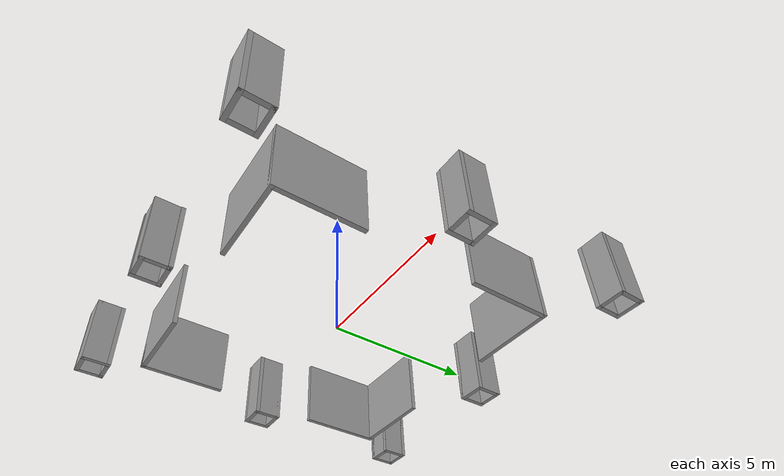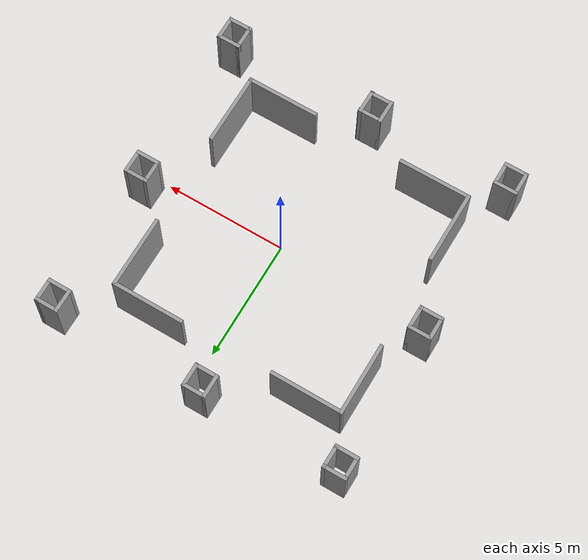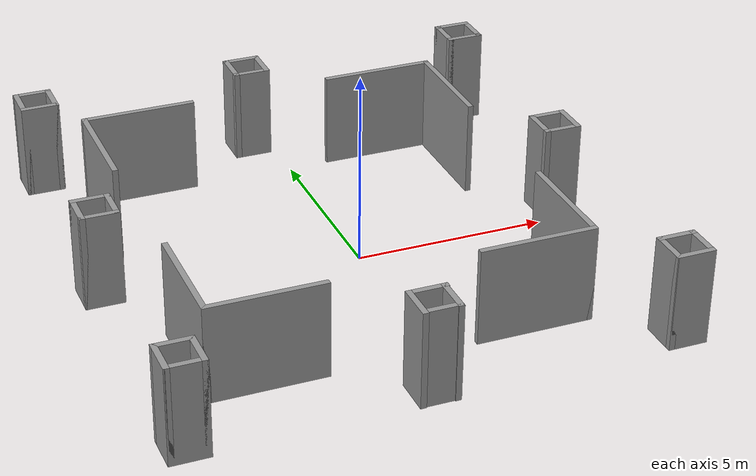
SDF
<?xml version='1.0'?>
<sdf version='1.6'>
  <model name='pillars'>
    <pose frame=''>-0.414747 0.360732 0 0 -0 0</pose>
    <link name='Wall_101'>
      <collision name='Wall_101_Collision'>
        <geometry>
          <box>
            <size>1 0.15 2.5</size>
          </box>
        </geometry>
        <pose frame=''>0 0 1.25 0 -0 0</pose>
      </collision>
      <visual name='Wall_101_Visual'>
        <pose frame=''>0 0 1.25 0 -0 0</pose>
        <geometry>
          <box>
            <size>1 0.15 2.5</size>
          </box>
        </geometry>
        <material>
          <script>
            <uri>file://media/materials/scripts/gazebo.material</uri>
            <name>Gazebo/Grey</name>
          </script>
          <ambient>1 1 1 1</ambient>
        </material>
        <meta>
          <layer>0</layer>
        </meta>
      </visual>
      <pose frame=''>5.65107 0.315356 0 0 -0 1.5708</pose>
    </link>
    <link name='Wall_103'>
      <collision name='Wall_103_Collision'>
        <geometry>
          <box>
            <size>1 0.15 2.5</size>
          </box>
        </geometry>
        <pose frame=''>0 0 1.25 0 -0 0</pose>
      </collision>
      <visual name='Wall_103_Visual'>
        <pose frame=''>0 0 1.25 0 -0 0</pose>
        <geometry>
          <box>
            <size>1 0.15 2.5</size>
          </box>
        </geometry>
        <material>
          <script>
            <uri>file://media/materials/scripts/gazebo.material</uri>
            <name>Gazebo/Grey</name>
          </script>
          <ambient>1 1 1 1</ambient>
        </material>
        <meta>
          <layer>0</layer>
        </meta>
      </visual>
      <pose frame=''>6.07607 0.740356 0 0 -0 0</pose>
    </link>
    <link name='Wall_104'>
      <collision name='Wall_104_Collision'>
        <geometry>
          <box>
            <size>1 0.15 2.5</size>
          </box>
        </geometry>
        <pose frame=''>0 0 1.25 0 -0 0</pose>
      </collision>
      <visual name='Wall_104_Visual'>
        <pose frame=''>0 0 1.25 0 -0 0</pose>
        <geometry>
          <box>
            <size>1 0.15 2.5</size>
          </box>
        </geometry>
        <material>
          <script>
            <uri>file://media/materials/scripts/gazebo.material</uri>
            <name>Gazebo/Grey</name>
          </script>
          <ambient>1 1 1 1</ambient>
        </material>
        <meta>
          <layer>0</layer>
        </meta>
      </visual>
      <pose frame=''>6.50107 0.315356 0 0 -0 -1.5708</pose>
    </link>
    <link name='Wall_105'>
      <collision name='Wall_105_Collision'>
        <geometry>
          <box>
            <size>1 0.15 2.5</size>
          </box>
        </geometry>
        <pose frame=''>0 0 1.25 0 -0 0</pose>
      </collision>
      <visual name='Wall_105_Visual'>
        <pose frame=''>0 0 1.25 0 -0 0</pose>
        <geometry>
          <box>
            <size>1 0.15 2.5</size>
          </box>
        </geometry>
        <material>
          <script>
            <uri>file://media/materials/scripts/gazebo.material</uri>
            <name>Gazebo/Grey</name>
          </script>
          <ambient>1 1 1 1</ambient>
        </material>
        <meta>
          <layer>0</layer>
        </meta>
      </visual>
      <pose frame=''>6.07607 -0.109644 0 0 -0 3.14159</pose>
    </link>
    <link name='Wall_106'>
      <collision name='Wall_106_Collision'>
        <geometry>
          <box>
            <size>1 0.15 2.5</size>
          </box>
        </geometry>
        <pose frame=''>0 0 1.25 0 -0 0</pose>
      </collision>
      <visual name='Wall_106_Visual'>
        <pose frame=''>0 0 1.25 0 -0 0</pose>
        <geometry>
          <box>
            <size>1 0.15 2.5</size>
          </box>
        </geometry>
        <material>
          <script>
            <uri>file://media/materials/scripts/gazebo.material</uri>
            <name>Gazebo/Grey</name>
          </script>
          <ambient>1 1 1 1</ambient>
        </material>
        <meta>
          <layer>0</layer>
        </meta>
      </visual>
      <pose frame=''>5.65107 0.315356 0 0 -0 1.5708</pose>
    </link>
    <link name='Wall_115'>
      <collision name='Wall_115_Collision'>
        <geometry>
          <box>
            <size>1 0.15 2.5</size>
          </box>
        </geometry>
        <pose frame=''>0 0 1.25 0 -0 0</pose>
      </collision>
      <visual name='Wall_115_Visual'>
        <pose frame=''>0 0 1.25 0 -0 0</pose>
        <geometry>
          <box>
            <size>1 0.15 2.5</size>
          </box>
        </geometry>
        <material>
          <script>
            <uri>file://media/materials/scripts/gazebo.material</uri>
            <name>Gazebo/Grey</name>
          </script>
          <ambient>1 1 1 1</ambient>
        </material>
        <meta>
          <layer>0</layer>
        </meta>
      </visual>
      <pose frame=''>-0.226491 6.75075 0 0 -0 0</pose>
    </link>
    <link name='Wall_116'>
      <collision name='Wall_116_Collision'>
        <geometry>
          <box>
            <size>1 0.15 2.5</size>
          </box>
        </geometry>
        <pose frame=''>0 0 1.25 0 -0 0</pose>
      </collision>
      <visual name='Wall_116_Visual'>
        <pose frame=''>0 0 1.25 0 -0 0</pose>
        <geometry>
          <box>
            <size>1 0.15 2.5</size>
          </box>
        </geometry>
        <material>
          <script>
            <uri>file://media/materials/scripts/gazebo.material</uri>
            <name>Gazebo/Grey</name>
          </script>
          <ambient>1 1 1 1</ambient>
        </material>
        <meta>
          <layer>0</layer>
        </meta>
      </visual>
      <pose frame=''>0.198509 6.32575 0 0 -0 -1.5708</pose>
    </link>
    <link name='Wall_117'>
      <collision name='Wall_117_Collision'>
        <geometry>
          <box>
            <size>1 0.15 2.5</size>
          </box>
        </geometry>
        <pose frame=''>0 0 1.25 0 -0 0</pose>
      </collision>
      <visual name='Wall_117_Visual'>
        <pose frame=''>0 0 1.25 0 -0 0</pose>
        <geometry>
          <box>
            <size>1 0.15 2.5</size>
          </box>
        </geometry>
        <material>
          <script>
            <uri>file://media/materials/scripts/gazebo.material</uri>
            <name>Gazebo/Grey</name>
          </script>
          <ambient>1 1 1 1</ambient>
        </material>
        <meta>
          <layer>0</layer>
        </meta>
      </visual>
      <pose frame=''>-0.226491 5.90075 0 0 -0 3.14159</pose>
    </link>
    <link name='Wall_118'>
      <collision name='Wall_118_Collision'>
        <geometry>
          <box>
            <size>1 0.15 2.5</size>
          </box>
        </geometry>
        <pose frame=''>0 0 1.25 0 -0 0</pose>
      </collision>
      <visual name='Wall_118_Visual'>
        <pose frame=''>0 0 1.25 0 -0 0</pose>
        <geometry>
          <box>
            <size>1 0.15 2.5</size>
          </box>
        </geometry>
        <material>
          <script>
            <uri>file://media/materials/scripts/gazebo.material</uri>
            <name>Gazebo/Grey</name>
          </script>
          <ambient>1 1 1 1</ambient>
        </material>
        <meta>
          <layer>0</layer>
        </meta>
      </visual>
      <pose frame=''>-0.651491 6.32575 0 0 -0 1.5708</pose>
    </link>
    <link name='Wall_120'>
      <collision name='Wall_120_Collision'>
        <geometry>
          <box>
            <size>1 0.15 2.5</size>
          </box>
        </geometry>
        <pose frame=''>0 0 1.25 0 -0 0</pose>
      </collision>
      <visual name='Wall_120_Visual'>
        <pose frame=''>0 0 1.25 0 -0 0</pose>
        <geometry>
          <box>
            <size>1 0.15 2.5</size>
          </box>
        </geometry>
        <material>
          <script>
            <uri>file://media/materials/scripts/gazebo.material</uri>
            <name>Gazebo/Grey</name>
          </script>
          <ambient>1 1 1 1</ambient>
        </material>
        <meta>
          <layer>0</layer>
        </meta>
      </visual>
      <pose frame=''>-0.651491 -6.34399 0 0 -0 -1.5708</pose>
    </link>
    <link name='Wall_121'>
      <collision name='Wall_121_Collision'>
        <geometry>
          <box>
            <size>1 0.15 2.5</size>
          </box>
        </geometry>
        <pose frame=''>0 0 1.25 0 -0 0</pose>
      </collision>
      <visual name='Wall_121_Visual'>
        <pose frame=''>0 0 1.25 0 -0 0</pose>
        <geometry>
          <box>
            <size>1 0.15 2.5</size>
          </box>
        </geometry>
        <material>
          <script>
            <uri>file://media/materials/scripts/gazebo.material</uri>
            <name>Gazebo/Grey</name>
          </script>
          <ambient>1 1 1 1</ambient>
        </material>
        <meta>
          <layer>0</layer>
        </meta>
      </visual>
      <pose frame=''>-0.226491 -6.74575 0 0 -0 0</pose>
    </link>
    <link name='Wall_122'>
      <collision name='Wall_122_Collision'>
        <geometry>
          <box>
            <size>1 0.15 2.5</size>
          </box>
        </geometry>
        <pose frame=''>0 0 1.25 0 -0 0</pose>
      </collision>
      <visual name='Wall_122_Visual'>
        <pose frame=''>0 0 1.25 0 -0 0</pose>
        <geometry>
          <box>
            <size>1 0.15 2.5</size>
          </box>
        </geometry>
        <material>
          <script>
            <uri>file://media/materials/scripts/gazebo.material</uri>
            <name>Gazebo/Grey</name>
          </script>
          <ambient>1 1 1 1</ambient>
        </material>
        <meta>
          <layer>0</layer>
        </meta>
      </visual>
      <pose frame=''>0.198509 -6.34399 0 0 -0 1.5708</pose>
    </link>
    <link name='Wall_123'>
      <collision name='Wall_123_Collision'>
        <geometry>
          <box>
            <size>1 0.15 2.5</size>
          </box>
        </geometry>
        <pose frame=''>0 0 1.25 0 -0 0</pose>
      </collision>
      <visual name='Wall_123_Visual'>
        <pose frame=''>0 0 1.25 0 -0 0</pose>
        <geometry>
          <box>
            <size>1 0.15 2.5</size>
          </box>
        </geometry>
        <material>
          <script>
            <uri>file://media/materials/scripts/gazebo.material</uri>
            <name>Gazebo/Grey</name>
          </script>
          <ambient>1 1 1 1</ambient>
        </material>
        <meta>
          <layer>0</layer>
        </meta>
      </visual>
      <pose frame=''>-0.203242 -5.91899 0 0 -0 3.14159</pose>
    </link>
    <link name='Wall_125'>
      <collision name='Wall_125_Collision'>
        <geometry>
          <box>
            <size>1 0.15 2.5</size>
          </box>
        </geometry>
        <pose frame=''>0 0 1.25 0 -0 0</pose>
      </collision>
      <visual name='Wall_125_Visual'>
        <pose frame=''>0 0 1.25 0 -0 0</pose>
        <geometry>
          <box>
            <size>1 0.15 2.5</size>
          </box>
        </geometry>
        <material>
          <script>
            <uri>file://media/materials/scripts/gazebo.material</uri>
            <name>Gazebo/Grey</name>
          </script>
          <ambient>1 1 1 1</ambient>
        </material>
        <meta>
          <layer>0</layer>
        </meta>
      </visual>
      <pose frame=''>-6.04155 -5.90071 0 0 -0 0</pose>
    </link>
    <link name='Wall_127'>
      <collision name='Wall_127_Collision'>
        <geometry>
          <box>
            <size>1 0.15 2.5</size>
          </box>
        </geometry>
        <pose frame=''>0 0 1.25 0 -0 0</pose>
      </collision>
      <visual name='Wall_127_Visual'>
        <pose frame=''>0 0 1.25 0 -0 0</pose>
        <geometry>
          <box>
            <size>1 0.15 2.5</size>
          </box>
        </geometry>
        <material>
          <script>
            <uri>file://media/materials/scripts/gazebo.material</uri>
            <name>Gazebo/Grey</name>
          </script>
          <ambient>1 1 1 1</ambient>
        </material>
        <meta>
          <layer>0</layer>
        </meta>
      </visual>
      <pose frame=''>-6.04268 5.91899 0 0 -0 0</pose>
    </link>
    <link name='Wall_34'>
      <collision name='Wall_34_Collision'>
        <geometry>
          <box>
            <size>3 0.15 2.5</size>
          </box>
        </geometry>
        <pose frame=''>0 0 1.25 0 -0 0</pose>
      </collision>
      <visual name='Wall_34_Visual'>
        <pose frame=''>0 0 1.25 0 -0 0</pose>
        <geometry>
          <box>
            <size>3 0.15 2.5</size>
          </box>
        </geometry>
        <material>
          <script>
            <uri>file://media/materials/scripts/gazebo.material</uri>
            <name>Gazebo/Grey</name>
          </script>
          <ambient>1 1 1 1</ambient>
        </material>
        <meta>
          <layer>0</layer>
        </meta>
      </visual>
      <pose frame=''>-5.14484 3.33335 0 0 -0 -1.5708</pose>
    </link>
    <link name='Wall_36'>
      <collision name='Wall_36_Collision'>
        <geometry>
          <box>
            <size>3 0.15 2.5</size>
          </box>
        </geometry>
        <pose frame=''>0 0 1.25 0 -0 0</pose>
      </collision>
      <visual name='Wall_36_Visual'>
        <pose frame=''>0 0 1.25 0 -0 0</pose>
        <geometry>
          <box>
            <size>3 0.15 2.5</size>
          </box>
        </geometry>
        <material>
          <script>
            <uri>file://media/materials/scripts/gazebo.material</uri>
            <name>Gazebo/Grey</name>
          </script>
          <ambient>1 1 1 1</ambient>
        </material>
        <meta>
          <layer>0</layer>
        </meta>
      </visual>
      <pose frame=''>-3.71984 4.75835 0 0 -0 0</pose>
    </link>
    <link name='Wall_38'>
      <collision name='Wall_38_Collision'>
        <geometry>
          <box>
            <size>3 0.15 2.5</size>
          </box>
        </geometry>
        <pose frame=''>0 0 1.25 0 -0 0</pose>
      </collision>
      <visual name='Wall_38_Visual'>
        <pose frame=''>0 0 1.25 0 -0 0</pose>
        <geometry>
          <box>
            <size>3 0.15 2.5</size>
          </box>
        </geometry>
        <material>
          <script>
            <uri>file://media/materials/scripts/gazebo.material</uri>
            <name>Gazebo/Grey</name>
          </script>
          <ambient>1 1 1 1</ambient>
        </material>
        <meta>
          <layer>0</layer>
        </meta>
      </visual>
      <pose frame=''>2.99179 4.77537 0 0 -0 0</pose>
    </link>
    <link name='Wall_39'>
      <collision name='Wall_39_Collision'>
        <geometry>
          <box>
            <size>3 0.15 2.5</size>
          </box>
        </geometry>
        <pose frame=''>0 0 1.25 0 -0 0</pose>
      </collision>
      <visual name='Wall_39_Visual'>
        <pose frame=''>0 0 1.25 0 -0 0</pose>
        <geometry>
          <box>
            <size>3 0.15 2.5</size>
          </box>
        </geometry>
        <material>
          <script>
            <uri>file://media/materials/scripts/gazebo.material</uri>
            <name>Gazebo/Grey</name>
          </script>
          <ambient>1 1 1 1</ambient>
        </material>
        <meta>
          <layer>0</layer>
        </meta>
      </visual>
      <pose frame=''>4.41678 3.35037 0 0 -0 -1.5708</pose>
    </link>
    <link name='Wall_41'>
      <collision name='Wall_41_Collision'>
        <geometry>
          <box>
            <size>3 0.15 2.5</size>
          </box>
        </geometry>
        <pose frame=''>0 0 1.25 0 -0 0</pose>
      </collision>
      <visual name='Wall_41_Visual'>
        <pose frame=''>0 0 1.25 0 -0 0</pose>
        <geometry>
          <box>
            <size>3 0.15 2.5</size>
          </box>
        </geometry>
        <material>
          <script>
            <uri>file://media/materials/scripts/gazebo.material</uri>
            <name>Gazebo/Grey</name>
          </script>
          <ambient>1 1 1 1</ambient>
        </material>
        <meta>
          <layer>0</layer>
        </meta>
      </visual>
      <pose frame=''>-5.03316 -3.43209 0 0 -0 -1.5708</pose>
    </link>
    <link name='Wall_42'>
      <collision name='Wall_42_Collision'>
        <geometry>
          <box>
            <size>3 0.15 2.5</size>
          </box>
        </geometry>
        <pose frame=''>0 0 1.25 0 -0 0</pose>
      </collision>
      <visual name='Wall_42_Visual'>
        <pose frame=''>0 0 1.25 0 -0 0</pose>
        <geometry>
          <box>
            <size>3 0.15 2.5</size>
          </box>
        </geometry>
        <material>
          <script>
            <uri>file://media/materials/scripts/gazebo.material</uri>
            <name>Gazebo/Grey</name>
          </script>
          <ambient>1 1 1 1</ambient>
        </material>
        <meta>
          <layer>0</layer>
        </meta>
      </visual>
      <pose frame=''>-3.60816 -4.85709 0 0 -0 0</pose>
    </link>
    <link name='Wall_44'>
      <collision name='Wall_44_Collision'>
        <geometry>
          <box>
            <size>3 0.15 2.5</size>
          </box>
        </geometry>
        <pose frame=''>0 0 1.25 0 -0 0</pose>
      </collision>
      <visual name='Wall_44_Visual'>
        <pose frame=''>0 0 1.25 0 -0 0</pose>
        <geometry>
          <box>
            <size>3 0.15 2.5</size>
          </box>
        </geometry>
        <material>
          <script>
            <uri>file://media/materials/scripts/gazebo.material</uri>
            <name>Gazebo/Grey</name>
          </script>
          <ambient>1 1 1 1</ambient>
        </material>
        <meta>
          <layer>0</layer>
        </meta>
      </visual>
      <pose frame=''>3.03198 -4.88292 0 0 -0 0</pose>
    </link>
    <link name='Wall_45'>
      <collision name='Wall_45_Collision'>
        <geometry>
          <box>
            <size>3 0.15 2.5</size>
          </box>
        </geometry>
        <pose frame=''>0 0 1.25 0 -0 0</pose>
      </collision>
      <visual name='Wall_45_Visual'>
        <pose frame=''>0 0 1.25 0 -0 0</pose>
        <geometry>
          <box>
            <size>3 0.15 2.5</size>
          </box>
        </geometry>
        <material>
          <script>
            <uri>file://media/materials/scripts/gazebo.material</uri>
            <name>Gazebo/Grey</name>
          </script>
          <ambient>1 1 1 1</ambient>
        </material>
        <meta>
          <layer>0</layer>
        </meta>
      </visual>
      <pose frame=''>4.45698 -3.45792 0 0 -0 1.5708</pose>
    </link>
    <link name='Wall_52'>
      <collision name='Wall_52_Collision'>
        <geometry>
          <box>
            <size>1 0.15 2.5</size>
          </box>
        </geometry>
        <pose frame=''>0 0 1.25 0 -0 0</pose>
      </collision>
      <visual name='Wall_52_Visual'>
        <pose frame=''>0 0 1.25 0 -0 0</pose>
        <geometry>
          <box>
            <size>1 0.15 2.5</size>
          </box>
        </geometry>
        <material>
          <script>
            <uri>file://media/materials/scripts/gazebo.material</uri>
            <name>Gazebo/Grey</name>
          </script>
          <ambient>1 1 1 1</ambient>
        </material>
        <meta>
          <layer>0</layer>
        </meta>
      </visual>
      <pose frame=''>-5.61768 6.34399 0 0 -0 1.5708</pose>
    </link>
    <link name='Wall_53'>
      <collision name='Wall_53_Collision'>
        <geometry>
          <box>
            <size>1 0.15 2.5</size>
          </box>
        </geometry>
        <pose frame=''>0 0 1.25 0 -0 0</pose>
      </collision>
      <visual name='Wall_53_Visual'>
        <pose frame=''>0 0 1.25 0 -0 0</pose>
        <geometry>
          <box>
            <size>1 0.15 2.5</size>
          </box>
        </geometry>
        <material>
          <script>
            <uri>file://media/materials/scripts/gazebo.material</uri>
            <name>Gazebo/Grey</name>
          </script>
          <ambient>1 1 1 1</ambient>
        </material>
        <meta>
          <layer>0</layer>
        </meta>
      </visual>
      <pose frame=''>-6.04268 6.76899 0 0 -0 3.14159</pose>
    </link>
    <link name='Wall_54'>
      <collision name='Wall_54_Collision'>
        <geometry>
          <box>
            <size>1 0.15 2.5</size>
          </box>
        </geometry>
        <pose frame=''>0 0 1.25 0 -0 0</pose>
      </collision>
      <visual name='Wall_54_Visual'>
        <pose frame=''>0 0 1.25 0 -0 0</pose>
        <geometry>
          <box>
            <size>1 0.15 2.5</size>
          </box>
        </geometry>
        <material>
          <script>
            <uri>file://media/materials/scripts/gazebo.material</uri>
            <name>Gazebo/Grey</name>
          </script>
          <ambient>1 1 1 1</ambient>
        </material>
        <meta>
          <layer>0</layer>
        </meta>
      </visual>
      <pose frame=''>-6.46768 6.34399 0 0 -0 -1.5708</pose>
    </link>
    <link name='Wall_70'>
      <collision name='Wall_70_Collision'>
        <geometry>
          <box>
            <size>1 0.15 2.5</size>
          </box>
        </geometry>
        <pose frame=''>0 0 1.25 0 -0 0</pose>
      </collision>
      <visual name='Wall_70_Visual'>
        <pose frame=''>0 0 1.25 0 -0 0</pose>
        <geometry>
          <box>
            <size>1 0.15 2.5</size>
          </box>
        </geometry>
        <material>
          <script>
            <uri>file://media/materials/scripts/gazebo.material</uri>
            <name>Gazebo/Grey</name>
          </script>
          <ambient>1 1 1 1</ambient>
        </material>
        <meta>
          <layer>0</layer>
        </meta>
      </visual>
      <pose frame=''>5.65693 6.31462 0 0 -0 1.5708</pose>
    </link>
    <link name='Wall_76'>
      <collision name='Wall_76_Collision'>
        <geometry>
          <box>
            <size>1 0.15 2.5</size>
          </box>
        </geometry>
        <pose frame=''>0 0 1.25 0 -0 0</pose>
      </collision>
      <visual name='Wall_76_Visual'>
        <pose frame=''>0 0 1.25 0 -0 0</pose>
        <geometry>
          <box>
            <size>1 0.15 2.5</size>
          </box>
        </geometry>
        <material>
          <script>
            <uri>file://media/materials/scripts/gazebo.material</uri>
            <name>Gazebo/Grey</name>
          </script>
          <ambient>1 1 1 1</ambient>
        </material>
        <meta>
          <layer>0</layer>
        </meta>
      </visual>
      <pose frame=''>-6.46655 -6.32571 0 0 -0 -1.5708</pose>
    </link>
    <link name='Wall_78'>
      <collision name='Wall_78_Collision'>
        <geometry>
          <box>
            <size>1 0.15 2.5</size>
          </box>
        </geometry>
        <pose frame=''>0 0 1.25 0 -0 0</pose>
      </collision>
      <visual name='Wall_78_Visual'>
        <pose frame=''>0 0 1.25 0 -0 0</pose>
        <geometry>
          <box>
            <size>1 0.15 2.5</size>
          </box>
        </geometry>
        <material>
          <script>
            <uri>file://media/materials/scripts/gazebo.material</uri>
            <name>Gazebo/Grey</name>
          </script>
          <ambient>1 1 1 1</ambient>
        </material>
        <meta>
          <layer>0</layer>
        </meta>
      </visual>
      <pose frame=''>-6.04155 -6.75071 0 0 -0 0</pose>
    </link>
    <link name='Wall_79'>
      <collision name='Wall_79_Collision'>
        <geometry>
          <box>
            <size>1 0.15 2.5</size>
          </box>
        </geometry>
        <pose frame=''>0 0 1.25 0 -0 0</pose>
      </collision>
      <visual name='Wall_79_Visual'>
        <pose frame=''>0 0 1.25 0 -0 0</pose>
        <geometry>
          <box>
            <size>1 0.15 2.5</size>
          </box>
        </geometry>
        <material>
          <script>
            <uri>file://media/materials/scripts/gazebo.material</uri>
            <name>Gazebo/Grey</name>
          </script>
          <ambient>1 1 1 1</ambient>
        </material>
        <meta>
          <layer>0</layer>
        </meta>
      </visual>
      <pose frame=''>-5.61655 -6.32571 0 0 -0 1.5708</pose>
    </link>
    <link name='Wall_81'>
      <collision name='Wall_81_Collision'>
        <geometry>
          <box>
            <size>1 0.15 2.5</size>
          </box>
        </geometry>
        <pose frame=''>0 0 1.25 0 -0 0</pose>
      </collision>
      <visual name='Wall_81_Visual'>
        <pose frame=''>0 0 1.25 0 -0 0</pose>
        <geometry>
          <box>
            <size>1 0.15 2.5</size>
          </box>
        </geometry>
        <material>
          <script>
            <uri>file://media/materials/scripts/gazebo.material</uri>
            <name>Gazebo/Grey</name>
          </script>
          <ambient>1 1 1 1</ambient>
        </material>
        <meta>
          <layer>0</layer>
        </meta>
      </visual>
      <pose frame=''>6.05845 -5.88542 0 0 -0 0</pose>
    </link>
    <link name='Wall_82'>
      <collision name='Wall_82_Collision'>
        <geometry>
          <box>
            <size>1 0.15 2.5</size>
          </box>
        </geometry>
        <pose frame=''>0 0 1.25 0 -0 0</pose>
      </collision>
      <visual name='Wall_82_Visual'>
        <pose frame=''>0 0 1.25 0 -0 0</pose>
        <geometry>
          <box>
            <size>1 0.15 2.5</size>
          </box>
        </geometry>
        <material>
          <script>
            <uri>file://media/materials/scripts/gazebo.material</uri>
            <name>Gazebo/Grey</name>
          </script>
          <ambient>1 1 1 1</ambient>
        </material>
        <meta>
          <layer>0</layer>
        </meta>
      </visual>
      <pose frame=''>6.48345 -6.31042 0 0 -0 -1.5708</pose>
    </link>
    <link name='Wall_83'>
      <collision name='Wall_83_Collision'>
        <geometry>
          <box>
            <size>1 0.15 2.5</size>
          </box>
        </geometry>
        <pose frame=''>0 0 1.25 0 -0 0</pose>
      </collision>
      <visual name='Wall_83_Visual'>
        <pose frame=''>0 0 1.25 0 -0 0</pose>
        <geometry>
          <box>
            <size>1 0.15 2.5</size>
          </box>
        </geometry>
        <material>
          <script>
            <uri>file://media/materials/scripts/gazebo.material</uri>
            <name>Gazebo/Grey</name>
          </script>
          <ambient>1 1 1 1</ambient>
        </material>
        <meta>
          <layer>0</layer>
        </meta>
      </visual>
      <pose frame=''>6.05845 -6.73542 0 0 -0 3.14159</pose>
    </link>
    <link name='Wall_84'>
      <collision name='Wall_84_Collision'>
        <geometry>
          <box>
            <size>1 0.15 2.5</size>
          </box>
        </geometry>
        <pose frame=''>0 0 1.25 0 -0 0</pose>
      </collision>
      <visual name='Wall_84_Visual'>
        <pose frame=''>0 0 1.25 0 -0 0</pose>
        <geometry>
          <box>
            <size>1 0.15 2.5</size>
          </box>
        </geometry>
        <material>
          <script>
            <uri>file://media/materials/scripts/gazebo.material</uri>
            <name>Gazebo/Grey</name>
          </script>
          <ambient>1 1 1 1</ambient>
        </material>
        <meta>
          <layer>0</layer>
        </meta>
      </visual>
      <pose frame=''>5.63345 -6.31042 0 0 -0 1.5708</pose>
    </link>
    <link name='Wall_86'>
      <collision name='Wall_86_Collision'>
        <geometry>
          <box>
            <size>1 0.15 2.5</size>
          </box>
        </geometry>
        <pose frame=''>0 0 1.25 0 -0 0</pose>
      </collision>
      <visual name='Wall_86_Visual'>
        <pose frame=''>0 0 1.25 0 -0 0</pose>
        <geometry>
          <box>
            <size>1 0.15 2.5</size>
          </box>
        </geometry>
        <material>
          <script>
            <uri>file://media/materials/scripts/gazebo.material</uri>
            <name>Gazebo/Grey</name>
          </script>
          <ambient>1 1 1 1</ambient>
        </material>
        <meta>
          <layer>0</layer>
        </meta>
      </visual>
      <pose frame=''>6.08193 6.73962 0 0 -0 0</pose>
    </link>
    <link name='Wall_87'>
      <collision name='Wall_87_Collision'>
        <geometry>
          <box>
            <size>1 0.15 2.5</size>
          </box>
        </geometry>
        <pose frame=''>0 0 1.25 0 -0 0</pose>
      </collision>
      <visual name='Wall_87_Visual'>
        <pose frame=''>0 0 1.25 0 -0 0</pose>
        <geometry>
          <box>
            <size>1 0.15 2.5</size>
          </box>
        </geometry>
        <material>
          <script>
            <uri>file://media/materials/scripts/gazebo.material</uri>
            <name>Gazebo/Grey</name>
          </script>
          <ambient>1 1 1 1</ambient>
        </material>
        <meta>
          <layer>0</layer>
        </meta>
      </visual>
      <pose frame=''>6.50693 6.31462 0 0 -0 -1.5708</pose>
    </link>
    <link name='Wall_88'>
      <collision name='Wall_88_Collision'>
        <geometry>
          <box>
            <size>1 0.15 2.5</size>
          </box>
        </geometry>
        <pose frame=''>0 0 1.25 0 -0 0</pose>
      </collision>
      <visual name='Wall_88_Visual'>
        <pose frame=''>0 0 1.25 0 -0 0</pose>
        <geometry>
          <box>
            <size>1 0.15 2.5</size>
          </box>
        </geometry>
        <material>
          <script>
            <uri>file://media/materials/scripts/gazebo.material</uri>
            <name>Gazebo/Grey</name>
          </script>
          <ambient>1 1 1 1</ambient>
        </material>
        <meta>
          <layer>0</layer>
        </meta>
      </visual>
      <pose frame=''>6.08193 5.88962 0 0 -0 3.14159</pose>
    </link>
    <link name='Wall_89'>
      <collision name='Wall_89_Collision'>
        <geometry>
          <box>
            <size>1 0.15 2.5</size>
          </box>
        </geometry>
        <pose frame=''>0 0 1.25 0 -0 0</pose>
      </collision>
      <visual name='Wall_89_Visual'>
        <pose frame=''>0 0 1.25 0 -0 0</pose>
        <geometry>
          <box>
            <size>1 0.15 2.5</size>
          </box>
        </geometry>
        <material>
          <script>
            <uri>file://media/materials/scripts/gazebo.material</uri>
            <name>Gazebo/Grey</name>
          </script>
          <ambient>1 1 1 1</ambient>
        </material>
        <meta>
          <layer>0</layer>
        </meta>
      </visual>
      <pose frame=''>5.65693 6.31462 0 0 -0 1.5708</pose>
    </link>
    <link name='Wall_91'>
      <collision name='Wall_91_Collision'>
        <geometry>
          <box>
            <size>1 0.15 2.5</size>
          </box>
        </geometry>
        <pose frame=''>0 0 1.25 0 -0 0</pose>
      </collision>
      <visual name='Wall_91_Visual'>
        <pose frame=''>0 0 1.25 0 -0 0</pose>
        <geometry>
          <box>
            <size>1 0.15 2.5</size>
          </box>
        </geometry>
        <material>
          <script>
            <uri>file://media/materials/scripts/gazebo.material</uri>
            <name>Gazebo/Grey</name>
          </script>
          <ambient>1 1 1 1</ambient>
        </material>
        <meta>
          <layer>0</layer>
        </meta>
      </visual>
      <pose frame=''>-6.08193 0.716975 0 0 -0 0</pose>
    </link>
    <link name='Wall_92'>
      <collision name='Wall_92_Collision'>
        <geometry>
          <box>
            <size>1 0.15 2.5</size>
          </box>
        </geometry>
        <pose frame=''>0 0 1.25 0 -0 0</pose>
      </collision>
      <visual name='Wall_92_Visual'>
        <pose frame=''>0 0 1.25 0 -0 0</pose>
        <geometry>
          <box>
            <size>1 0.15 2.5</size>
          </box>
        </geometry>
        <material>
          <script>
            <uri>file://media/materials/scripts/gazebo.material</uri>
            <name>Gazebo/Grey</name>
          </script>
          <ambient>1 1 1 1</ambient>
        </material>
        <meta>
          <layer>0</layer>
        </meta>
      </visual>
      <pose frame=''>-5.65693 0.291975 0 0 -0 -1.5708</pose>
    </link>
    <link name='Wall_93'>
      <collision name='Wall_93_Collision'>
        <geometry>
          <box>
            <size>1 0.15 2.5</size>
          </box>
        </geometry>
        <pose frame=''>0 0 1.25 0 -0 0</pose>
      </collision>
      <visual name='Wall_93_Visual'>
        <pose frame=''>0 0 1.25 0 -0 0</pose>
        <geometry>
          <box>
            <size>1 0.15 2.5</size>
          </box>
        </geometry>
        <material>
          <script>
            <uri>file://media/materials/scripts/gazebo.material</uri>
            <name>Gazebo/Grey</name>
          </script>
          <ambient>1 1 1 1</ambient>
        </material>
        <meta>
          <layer>0</layer>
        </meta>
      </visual>
      <pose frame=''>-6.08193 -0.133025 0 0 -0 3.14159</pose>
    </link>
    <link name='Wall_94'>
      <collision name='Wall_94_Collision'>
        <geometry>
          <box>
            <size>1 0.15 2.5</size>
          </box>
        </geometry>
        <pose frame=''>0 0 1.25 0 -0 0</pose>
      </collision>
      <visual name='Wall_94_Visual'>
        <pose frame=''>0 0 1.25 0 -0 0</pose>
        <geometry>
          <box>
            <size>1 0.15 2.5</size>
          </box>
        </geometry>
        <material>
          <script>
            <uri>file://media/materials/scripts/gazebo.material</uri>
            <name>Gazebo/Grey</name>
          </script>
          <ambient>1 1 1 1</ambient>
        </material>
        <meta>
          <layer>0</layer>
        </meta>
      </visual>
      <pose frame=''>-6.50693 0.291975 0 0 -0 1.5708</pose>
    </link>
    <static>1</static>
  </model>
</sdf>
